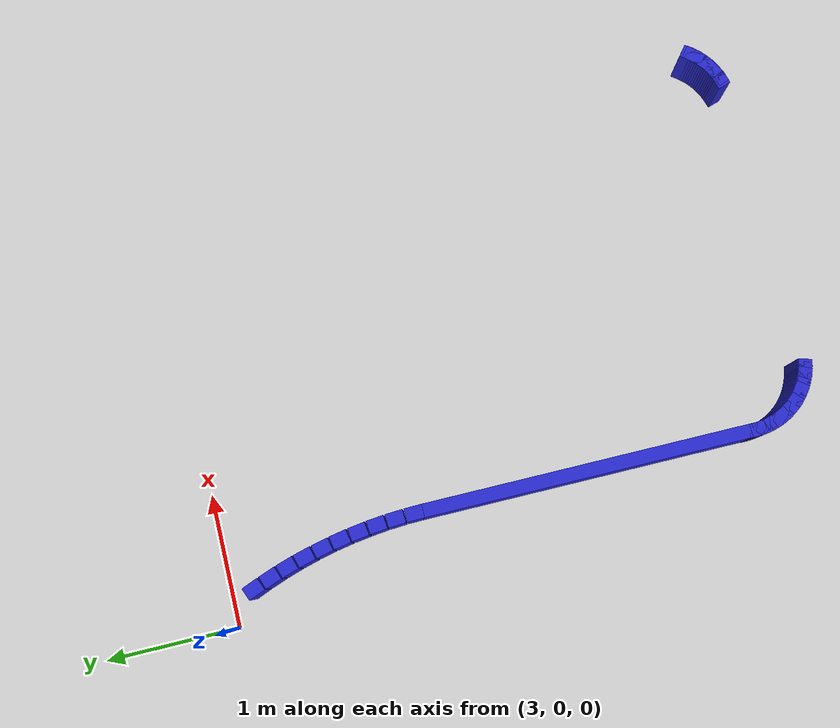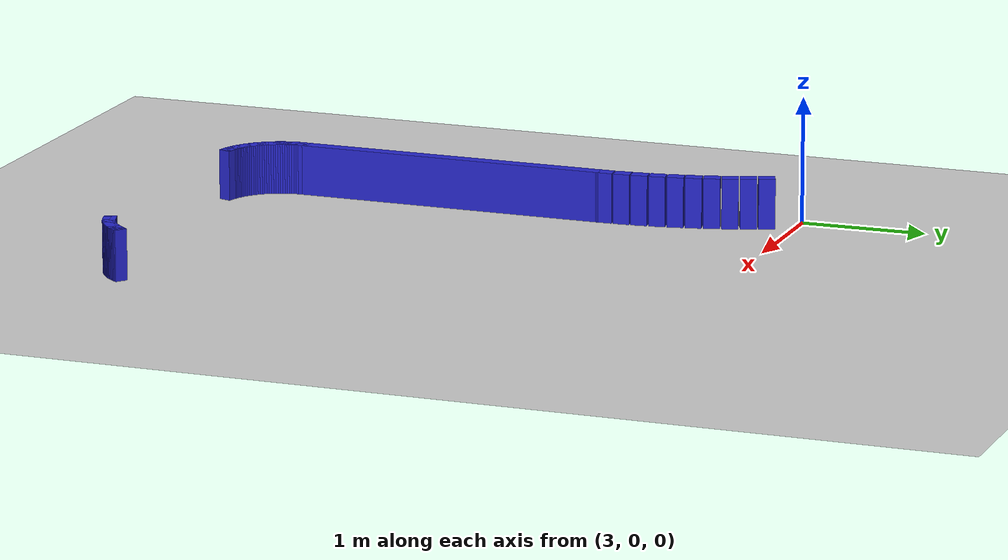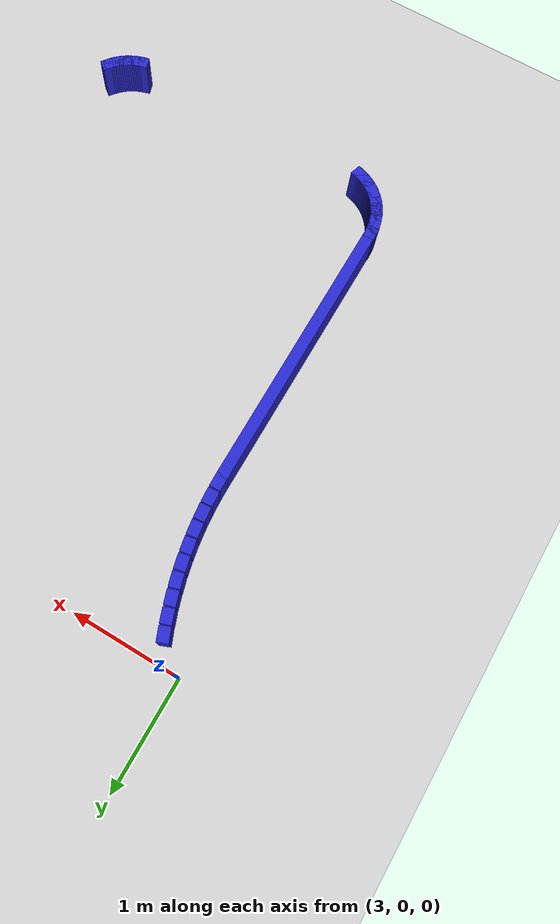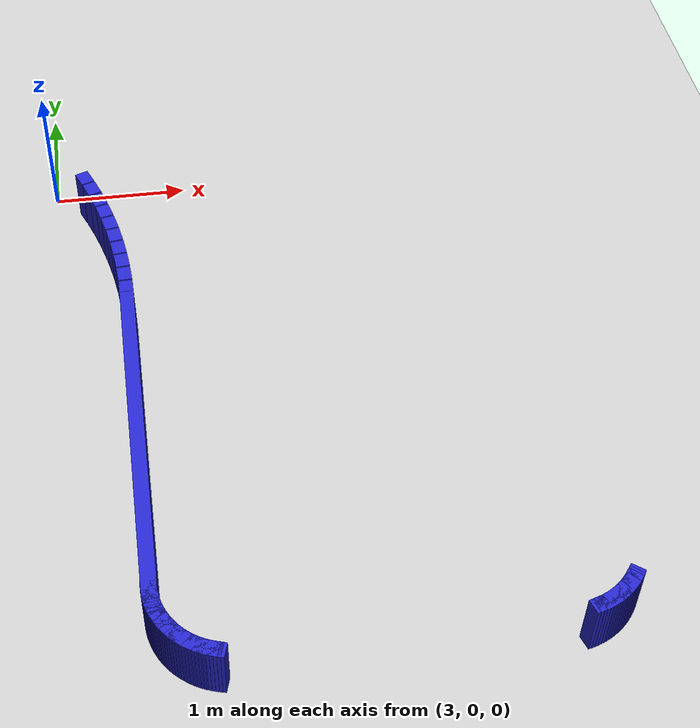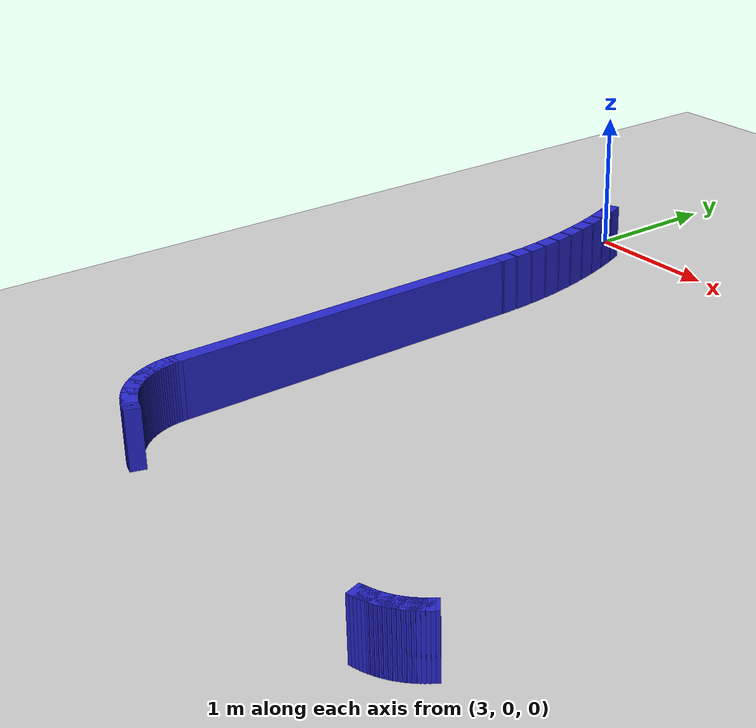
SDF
<sdf version="1.6">
 <world name="new_race_track">
  <include><uri>model://ground_plane</uri></include>
  <include><uri>model://sun</uri></include>
  <model name="race_track">
   <static>true</static>
   <link name="wall_link_149">
    <collision name="c"><geometry><box><size>0.1305 0.1 0.4</size></box></geometry></collision>
    <visual name="v">
     <geometry><box><size>0.1305 0.1 0.4</size></box></geometry>
     <material><ambient>0.15 0.15 0.8 1</ambient><diffuse>0.15 0.15 0.8 1</diffuse></material>
    </visual>
    <pose>3.2465 -0.2134 0.200 0 0 -1.1882</pose>
   </link>
   <link name="wall_link_150">
    <collision name="c"><geometry><box><size>0.1305 0.1 0.4</size></box></geometry></collision>
    <visual name="v">
     <geometry><box><size>0.1305 0.1 0.4</size></box></geometry>
     <material><ambient>0.15 0.15 0.8 1</ambient><diffuse>0.15 0.15 0.8 1</diffuse></material>
    </visual>
    <pose>3.2965 -0.3452 0.200 0 0 -1.2284</pose>
   </link>
   <link name="wall_link_151">
    <collision name="c"><geometry><box><size>0.1305 0.1 0.4</size></box></geometry></collision>
    <visual name="v">
     <geometry><box><size>0.1305 0.1 0.4</size></box></geometry>
     <material><ambient>0.15 0.15 0.8 1</ambient><diffuse>0.15 0.15 0.8 1</diffuse></material>
    </visual>
    <pose>3.3411 -0.4789 0.200 0 0 -1.2687</pose>
   </link>
   <link name="wall_link_152">
    <collision name="c"><geometry><box><size>0.1305 0.1 0.4</size></box></geometry></collision>
    <visual name="v">
     <geometry><box><size>0.1305 0.1 0.4</size></box></geometry>
     <material><ambient>0.15 0.15 0.8 1</ambient><diffuse>0.15 0.15 0.8 1</diffuse></material>
    </visual>
    <pose>3.3803 -0.6142 0.200 0 0 -1.3090</pose>
   </link>
   <link name="wall_link_153">
    <collision name="c"><geometry><box><size>0.1305 0.1 0.4</size></box></geometry></collision>
    <visual name="v">
     <geometry><box><size>0.1305 0.1 0.4</size></box></geometry>
     <material><ambient>0.15 0.15 0.8 1</ambient><diffuse>0.15 0.15 0.8 1</diffuse></material>
    </visual>
    <pose>3.4141 -0.7511 0.200 0 0 -1.3493</pose>
   </link>
   <link name="wall_link_154">
    <collision name="c"><geometry><box><size>0.1305 0.1 0.4</size></box></geometry></collision>
    <visual name="v">
     <geometry><box><size>0.1305 0.1 0.4</size></box></geometry>
     <material><ambient>0.15 0.15 0.8 1</ambient><diffuse>0.15 0.15 0.8 1</diffuse></material>
    </visual>
    <pose>3.4423 -0.8892 0.200 0 0 -1.3896</pose>
   </link>
   <link name="wall_link_155">
    <collision name="c"><geometry><box><size>0.1305 0.1 0.4</size></box></geometry></collision>
    <visual name="v">
     <geometry><box><size>0.1305 0.1 0.4</size></box></geometry>
     <material><ambient>0.15 0.15 0.8 1</ambient><diffuse>0.15 0.15 0.8 1</diffuse></material>
    </visual>
    <pose>3.4649 -1.0283 0.200 0 0 -1.4298</pose>
   </link>
   <link name="wall_link_156">
    <collision name="c"><geometry><box><size>0.1305 0.1 0.4</size></box></geometry></collision>
    <visual name="v">
     <geometry><box><size>0.1305 0.1 0.4</size></box></geometry>
     <material><ambient>0.15 0.15 0.8 1</ambient><diffuse>0.15 0.15 0.8 1</diffuse></material>
    </visual>
    <pose>3.4819 -1.1682 0.200 0 0 -1.4701</pose>
   </link>
   <link name="wall_link_157">
    <collision name="c"><geometry><box><size>0.1305 0.1 0.4</size></box></geometry></collision>
    <visual name="v">
     <geometry><box><size>0.1305 0.1 0.4</size></box></geometry>
     <material><ambient>0.15 0.15 0.8 1</ambient><diffuse>0.15 0.15 0.8 1</diffuse></material>
    </visual>
    <pose>3.4932 -1.3087 0.200 0 0 -1.5104</pose>
   </link>
   <link name="wall_link_158">
    <collision name="c"><geometry><box><size>0.1305 0.1 0.4</size></box></geometry></collision>
    <visual name="v">
     <geometry><box><size>0.1305 0.1 0.4</size></box></geometry>
     <material><ambient>0.15 0.15 0.8 1</ambient><diffuse>0.15 0.15 0.8 1</diffuse></material>
    </visual>
    <pose>3.4989 -1.4495 0.200 0 0 -1.5507</pose>
   </link>
   <link name="merged_wall_link_159">
    <pose>3.5000 -2.7600 0.2000 0.0000 0.0000 -1.5708</pose>
    <collision name="c"><geometry><box><size>2.5300 0.1000 0.4000</size></box></geometry></collision>
    <visual name="v">
     <geometry><box><size>2.5300 0.1000 0.4000</size></box></geometry>
     <material><ambient>0.15 0.15 0.8 1</ambient><diffuse>0.15 0.15 0.8 1</diffuse></material>
    </visual>
   </link>
   <link name="wall_link_160">
    <collision name="c"><geometry><box><size>0.1305 0.1 0.4</size></box></geometry></collision>
    <visual name="v">
     <geometry><box><size>0.1305 0.1 0.4</size></box></geometry>
     <material><ambient>0.15 0.15 0.8 1</ambient><diffuse>0.15 0.15 0.8 1</diffuse></material>
    </visual>
    <pose>3.5005 -4.0101 0.200 0 0 -1.5507</pose>
   </link>
   <link name="wall_link_161">
    <collision name="c"><geometry><box><size>0.1305 0.1 0.4</size></box></geometry></collision>
    <visual name="v">
     <geometry><box><size>0.1305 0.1 0.4</size></box></geometry>
     <material><ambient>0.15 0.15 0.8 1</ambient><diffuse>0.15 0.15 0.8 1</diffuse></material>
    </visual>
    <pose>3.5013 -4.0302 0.200 0 0 -1.5104</pose>
   </link>
   <link name="wall_link_162">
    <collision name="c"><geometry><box><size>0.1305 0.1 0.4</size></box></geometry></collision>
    <visual name="v">
     <geometry><box><size>0.1305 0.1 0.4</size></box></geometry>
     <material><ambient>0.15 0.15 0.8 1</ambient><diffuse>0.15 0.15 0.8 1</diffuse></material>
    </visual>
    <pose>3.5029 -4.0502 0.200 0 0 -1.4701</pose>
   </link>
   <link name="wall_link_163">
    <collision name="c"><geometry><box><size>0.1305 0.1 0.4</size></box></geometry></collision>
    <visual name="v">
     <geometry><box><size>0.1305 0.1 0.4</size></box></geometry>
     <material><ambient>0.15 0.15 0.8 1</ambient><diffuse>0.15 0.15 0.8 1</diffuse></material>
    </visual>
    <pose>3.5054 -4.0702 0.200 0 0 -1.4298</pose>
   </link>
   <link name="wall_link_164">
    <collision name="c"><geometry><box><size>0.1305 0.1 0.4</size></box></geometry></collision>
    <visual name="v">
     <geometry><box><size>0.1305 0.1 0.4</size></box></geometry>
     <material><ambient>0.15 0.15 0.8 1</ambient><diffuse>0.15 0.15 0.8 1</diffuse></material>
    </visual>
    <pose>3.5086 -4.0901 0.200 0 0 -1.3896</pose>
   </link>
   <link name="wall_link_165">
    <collision name="c"><geometry><box><size>0.1305 0.1 0.4</size></box></geometry></collision>
    <visual name="v">
     <geometry><box><size>0.1305 0.1 0.4</size></box></geometry>
     <material><ambient>0.15 0.15 0.8 1</ambient><diffuse>0.15 0.15 0.8 1</diffuse></material>
    </visual>
    <pose>3.5126 -4.1098 0.200 0 0 -1.3493</pose>
   </link>
   <link name="wall_link_166">
    <collision name="c"><geometry><box><size>0.1305 0.1 0.4</size></box></geometry></collision>
    <visual name="v">
     <geometry><box><size>0.1305 0.1 0.4</size></box></geometry>
     <material><ambient>0.15 0.15 0.8 1</ambient><diffuse>0.15 0.15 0.8 1</diffuse></material>
    </visual>
    <pose>3.5174 -4.1293 0.200 0 0 -1.3090</pose>
   </link>
   <link name="wall_link_167">
    <collision name="c"><geometry><box><size>0.1305 0.1 0.4</size></box></geometry></collision>
    <visual name="v">
     <geometry><box><size>0.1305 0.1 0.4</size></box></geometry>
     <material><ambient>0.15 0.15 0.8 1</ambient><diffuse>0.15 0.15 0.8 1</diffuse></material>
    </visual>
    <pose>3.5230 -4.1486 0.200 0 0 -1.2687</pose>
   </link>
   <link name="wall_link_168">
    <collision name="c"><geometry><box><size>0.1305 0.1 0.4</size></box></geometry></collision>
    <visual name="v">
     <geometry><box><size>0.1305 0.1 0.4</size></box></geometry>
     <material><ambient>0.15 0.15 0.8 1</ambient><diffuse>0.15 0.15 0.8 1</diffuse></material>
    </visual>
    <pose>3.5294 -4.1677 0.200 0 0 -1.2284</pose>
   </link>
   <link name="wall_link_169">
    <collision name="c"><geometry><box><size>0.1305 0.1 0.4</size></box></geometry></collision>
    <visual name="v">
     <geometry><box><size>0.1305 0.1 0.4</size></box></geometry>
     <material><ambient>0.15 0.15 0.8 1</ambient><diffuse>0.15 0.15 0.8 1</diffuse></material>
    </visual>
    <pose>3.5365 -4.1865 0.200 0 0 -1.1882</pose>
   </link>
   <link name="wall_link_170">
    <collision name="c"><geometry><box><size>0.1305 0.1 0.4</size></box></geometry></collision>
    <visual name="v">
     <geometry><box><size>0.1305 0.1 0.4</size></box></geometry>
     <material><ambient>0.15 0.15 0.8 1</ambient><diffuse>0.15 0.15 0.8 1</diffuse></material>
    </visual>
    <pose>3.5444 -4.2050 0.200 0 0 -1.1479</pose>
   </link>
   <link name="wall_link_171">
    <collision name="c"><geometry><box><size>0.1305 0.1 0.4</size></box></geometry></collision>
    <visual name="v">
     <geometry><box><size>0.1305 0.1 0.4</size></box></geometry>
     <material><ambient>0.15 0.15 0.8 1</ambient><diffuse>0.15 0.15 0.8 1</diffuse></material>
    </visual>
    <pose>3.5530 -4.2232 0.200 0 0 -1.1076</pose>
   </link>
   <link name="wall_link_172">
    <collision name="c"><geometry><box><size>0.1305 0.1 0.4</size></box></geometry></collision>
    <visual name="v">
     <geometry><box><size>0.1305 0.1 0.4</size></box></geometry>
     <material><ambient>0.15 0.15 0.8 1</ambient><diffuse>0.15 0.15 0.8 1</diffuse></material>
    </visual>
    <pose>3.5624 -4.2410 0.200 0 0 -1.0673</pose>
   </link>
   <link name="wall_link_173">
    <collision name="c"><geometry><box><size>0.1305 0.1 0.4</size></box></geometry></collision>
    <visual name="v">
     <geometry><box><size>0.1305 0.1 0.4</size></box></geometry>
     <material><ambient>0.15 0.15 0.8 1</ambient><diffuse>0.15 0.15 0.8 1</diffuse></material>
    </visual>
    <pose>3.5725 -4.2585 0.200 0 0 -1.0271</pose>
   </link>
   <link name="wall_link_174">
    <collision name="c"><geometry><box><size>0.1305 0.1 0.4</size></box></geometry></collision>
    <visual name="v">
     <geometry><box><size>0.1305 0.1 0.4</size></box></geometry>
     <material><ambient>0.15 0.15 0.8 1</ambient><diffuse>0.15 0.15 0.8 1</diffuse></material>
    </visual>
    <pose>3.5832 -4.2755 0.200 0 0 -0.9868</pose>
   </link>
   <link name="wall_link_175">
    <collision name="c"><geometry><box><size>0.1305 0.1 0.4</size></box></geometry></collision>
    <visual name="v">
     <geometry><box><size>0.1305 0.1 0.4</size></box></geometry>
     <material><ambient>0.15 0.15 0.8 1</ambient><diffuse>0.15 0.15 0.8 1</diffuse></material>
    </visual>
    <pose>3.5946 -4.2920 0.200 0 0 -0.9465</pose>
   </link>
   <link name="wall_link_176">
    <collision name="c"><geometry><box><size>0.1305 0.1 0.4</size></box></geometry></collision>
    <visual name="v">
     <geometry><box><size>0.1305 0.1 0.4</size></box></geometry>
     <material><ambient>0.15 0.15 0.8 1</ambient><diffuse>0.15 0.15 0.8 1</diffuse></material>
    </visual>
    <pose>3.6067 -4.3081 0.200 0 0 -0.9062</pose>
   </link>
   <link name="wall_link_177">
    <collision name="c"><geometry><box><size>0.1305 0.1 0.4</size></box></geometry></collision>
    <visual name="v">
     <geometry><box><size>0.1305 0.1 0.4</size></box></geometry>
     <material><ambient>0.15 0.15 0.8 1</ambient><diffuse>0.15 0.15 0.8 1</diffuse></material>
    </visual>
    <pose>3.6195 -4.3237 0.200 0 0 -0.8660</pose>
   </link>
   <link name="wall_link_178">
    <collision name="c"><geometry><box><size>0.1305 0.1 0.4</size></box></geometry></collision>
    <visual name="v">
     <geometry><box><size>0.1305 0.1 0.4</size></box></geometry>
     <material><ambient>0.15 0.15 0.8 1</ambient><diffuse>0.15 0.15 0.8 1</diffuse></material>
    </visual>
    <pose>3.6328 -4.3388 0.200 0 0 -0.8257</pose>
   </link>
   <link name="wall_link_179">
    <collision name="c"><geometry><box><size>0.1305 0.1 0.4</size></box></geometry></collision>
    <visual name="v">
     <geometry><box><size>0.1305 0.1 0.4</size></box></geometry>
     <material><ambient>0.15 0.15 0.8 1</ambient><diffuse>0.15 0.15 0.8 1</diffuse></material>
    </visual>
    <pose>3.6467 -4.3533 0.200 0 0 -0.7854</pose>
   </link>
   <link name="wall_link_180">
    <collision name="c"><geometry><box><size>0.1305 0.1 0.4</size></box></geometry></collision>
    <visual name="v">
     <geometry><box><size>0.1305 0.1 0.4</size></box></geometry>
     <material><ambient>0.15 0.15 0.8 1</ambient><diffuse>0.15 0.15 0.8 1</diffuse></material>
    </visual>
    <pose>3.6612 -4.3672 0.200 0 0 -0.7451</pose>
   </link>
   <link name="wall_link_181">
    <collision name="c"><geometry><box><size>0.1305 0.1 0.4</size></box></geometry></collision>
    <visual name="v">
     <geometry><box><size>0.1305 0.1 0.4</size></box></geometry>
     <material><ambient>0.15 0.15 0.8 1</ambient><diffuse>0.15 0.15 0.8 1</diffuse></material>
    </visual>
    <pose>3.6763 -4.3805 0.200 0 0 -0.7048</pose>
   </link>
   <link name="wall_link_182">
    <collision name="c"><geometry><box><size>0.1305 0.1 0.4</size></box></geometry></collision>
    <visual name="v">
     <geometry><box><size>0.1305 0.1 0.4</size></box></geometry>
     <material><ambient>0.15 0.15 0.8 1</ambient><diffuse>0.15 0.15 0.8 1</diffuse></material>
    </visual>
    <pose>3.6919 -4.3933 0.200 0 0 -0.6646</pose>
   </link>
   <link name="wall_link_183">
    <collision name="c"><geometry><box><size>0.1305 0.1 0.4</size></box></geometry></collision>
    <visual name="v">
     <geometry><box><size>0.1305 0.1 0.4</size></box></geometry>
     <material><ambient>0.15 0.15 0.8 1</ambient><diffuse>0.15 0.15 0.8 1</diffuse></material>
    </visual>
    <pose>3.7080 -4.4054 0.200 0 0 -0.6243</pose>
   </link>
   <link name="wall_link_184">
    <collision name="c"><geometry><box><size>0.1305 0.1 0.4</size></box></geometry></collision>
    <visual name="v">
     <geometry><box><size>0.1305 0.1 0.4</size></box></geometry>
     <material><ambient>0.15 0.15 0.8 1</ambient><diffuse>0.15 0.15 0.8 1</diffuse></material>
    </visual>
    <pose>3.7245 -4.4168 0.200 0 0 -0.5840</pose>
   </link>
   <link name="wall_link_185">
    <collision name="c"><geometry><box><size>0.1305 0.1 0.4</size></box></geometry></collision>
    <visual name="v">
     <geometry><box><size>0.1305 0.1 0.4</size></box></geometry>
     <material><ambient>0.15 0.15 0.8 1</ambient><diffuse>0.15 0.15 0.8 1</diffuse></material>
    </visual>
    <pose>3.7415 -4.4275 0.200 0 0 -0.5437</pose>
   </link>
   <link name="wall_link_186">
    <collision name="c"><geometry><box><size>0.1305 0.1 0.4</size></box></geometry></collision>
    <visual name="v">
     <geometry><box><size>0.1305 0.1 0.4</size></box></geometry>
     <material><ambient>0.15 0.15 0.8 1</ambient><diffuse>0.15 0.15 0.8 1</diffuse></material>
    </visual>
    <pose>3.7590 -4.4376 0.200 0 0 -0.5035</pose>
   </link>
   <link name="wall_link_187">
    <collision name="c"><geometry><box><size>0.1305 0.1 0.4</size></box></geometry></collision>
    <visual name="v">
     <geometry><box><size>0.1305 0.1 0.4</size></box></geometry>
     <material><ambient>0.15 0.15 0.8 1</ambient><diffuse>0.15 0.15 0.8 1</diffuse></material>
    </visual>
    <pose>3.7768 -4.4470 0.200 0 0 -0.4632</pose>
   </link>
   <link name="wall_link_188">
    <collision name="c"><geometry><box><size>0.1305 0.1 0.4</size></box></geometry></collision>
    <visual name="v">
     <geometry><box><size>0.1305 0.1 0.4</size></box></geometry>
     <material><ambient>0.15 0.15 0.8 1</ambient><diffuse>0.15 0.15 0.8 1</diffuse></material>
    </visual>
    <pose>3.7950 -4.4556 0.200 0 0 -0.4229</pose>
   </link>
   <link name="wall_link_189">
    <collision name="c"><geometry><box><size>0.1305 0.1 0.4</size></box></geometry></collision>
    <visual name="v">
     <geometry><box><size>0.1305 0.1 0.4</size></box></geometry>
     <material><ambient>0.15 0.15 0.8 1</ambient><diffuse>0.15 0.15 0.8 1</diffuse></material>
    </visual>
    <pose>3.8135 -4.4635 0.200 0 0 -0.3826</pose>
   </link>
   <link name="wall_link_190">
    <collision name="c"><geometry><box><size>0.1305 0.1 0.4</size></box></geometry></collision>
    <visual name="v">
     <geometry><box><size>0.1305 0.1 0.4</size></box></geometry>
     <material><ambient>0.15 0.15 0.8 1</ambient><diffuse>0.15 0.15 0.8 1</diffuse></material>
    </visual>
    <pose>3.8323 -4.4706 0.200 0 0 -0.3424</pose>
   </link>
   <link name="wall_link_191">
    <collision name="c"><geometry><box><size>0.1305 0.1 0.4</size></box></geometry></collision>
    <visual name="v">
     <geometry><box><size>0.1305 0.1 0.4</size></box></geometry>
     <material><ambient>0.15 0.15 0.8 1</ambient><diffuse>0.15 0.15 0.8 1</diffuse></material>
    </visual>
    <pose>3.8514 -4.4770 0.200 0 0 -0.3021</pose>
   </link>
   <link name="wall_link_207">
    <collision name="c"><geometry><box><size>0.1305 0.1 0.4</size></box></geometry></collision>
    <visual name="v">
     <geometry><box><size>0.1305 0.1 0.4</size></box></geometry>
     <material><ambient>0.15 0.15 0.8 1</ambient><diffuse>0.15 0.15 0.8 1</diffuse></material>
    </visual>
    <pose>6.1486 -4.4770 0.200 0 0 0.3021</pose>
   </link>
   <link name="wall_link_208">
    <collision name="c"><geometry><box><size>0.1305 0.1 0.4</size></box></geometry></collision>
    <visual name="v">
     <geometry><box><size>0.1305 0.1 0.4</size></box></geometry>
     <material><ambient>0.15 0.15 0.8 1</ambient><diffuse>0.15 0.15 0.8 1</diffuse></material>
    </visual>
    <pose>6.1677 -4.4706 0.200 0 0 0.3424</pose>
   </link>
   <link name="wall_link_209">
    <collision name="c"><geometry><box><size>0.1305 0.1 0.4</size></box></geometry></collision>
    <visual name="v">
     <geometry><box><size>0.1305 0.1 0.4</size></box></geometry>
     <material><ambient>0.15 0.15 0.8 1</ambient><diffuse>0.15 0.15 0.8 1</diffuse></material>
    </visual>
    <pose>6.1865 -4.4635 0.200 0 0 0.3826</pose>
   </link>
   <link name="wall_link_210">
    <collision name="c"><geometry><box><size>0.1305 0.1 0.4</size></box></geometry></collision>
    <visual name="v">
     <geometry><box><size>0.1305 0.1 0.4</size></box></geometry>
     <material><ambient>0.15 0.15 0.8 1</ambient><diffuse>0.15 0.15 0.8 1</diffuse></material>
    </visual>
    <pose>6.2050 -4.4556 0.200 0 0 0.4229</pose>
   </link>
   <link name="wall_link_211">
    <collision name="c"><geometry><box><size>0.1305 0.1 0.4</size></box></geometry></collision>
    <visual name="v">
     <geometry><box><size>0.1305 0.1 0.4</size></box></geometry>
     <material><ambient>0.15 0.15 0.8 1</ambient><diffuse>0.15 0.15 0.8 1</diffuse></material>
    </visual>
    <pose>6.2232 -4.4470 0.200 0 0 0.4632</pose>
   </link>
   <link name="wall_link_212">
    <collision name="c"><geometry><box><size>0.1305 0.1 0.4</size></box></geometry></collision>
    <visual name="v">
     <geometry><box><size>0.1305 0.1 0.4</size></box></geometry>
     <material><ambient>0.15 0.15 0.8 1</ambient><diffuse>0.15 0.15 0.8 1</diffuse></material>
    </visual>
    <pose>6.2410 -4.4376 0.200 0 0 0.5035</pose>
   </link>
   <link name="wall_link_213">
    <collision name="c"><geometry><box><size>0.1305 0.1 0.4</size></box></geometry></collision>
    <visual name="v">
     <geometry><box><size>0.1305 0.1 0.4</size></box></geometry>
     <material><ambient>0.15 0.15 0.8 1</ambient><diffuse>0.15 0.15 0.8 1</diffuse></material>
    </visual>
    <pose>6.2585 -4.4275 0.200 0 0 0.5437</pose>
   </link>
   <link name="wall_link_214">
    <collision name="c"><geometry><box><size>0.1305 0.1 0.4</size></box></geometry></collision>
    <visual name="v">
     <geometry><box><size>0.1305 0.1 0.4</size></box></geometry>
     <material><ambient>0.15 0.15 0.8 1</ambient><diffuse>0.15 0.15 0.8 1</diffuse></material>
    </visual>
    <pose>6.2755 -4.4168 0.200 0 0 0.5840</pose>
   </link>
   <link name="wall_link_215">
    <collision name="c"><geometry><box><size>0.1305 0.1 0.4</size></box></geometry></collision>
    <visual name="v">
     <geometry><box><size>0.1305 0.1 0.4</size></box></geometry>
     <material><ambient>0.15 0.15 0.8 1</ambient><diffuse>0.15 0.15 0.8 1</diffuse></material>
    </visual>
    <pose>6.2920 -4.4054 0.200 0 0 0.6243</pose>
   </link>
   <link name="wall_link_216">
    <collision name="c"><geometry><box><size>0.1305 0.1 0.4</size></box></geometry></collision>
    <visual name="v">
     <geometry><box><size>0.1305 0.1 0.4</size></box></geometry>
     <material><ambient>0.15 0.15 0.8 1</ambient><diffuse>0.15 0.15 0.8 1</diffuse></material>
    </visual>
    <pose>6.3081 -4.3933 0.200 0 0 0.6646</pose>
   </link>
   <link name="wall_link_217">
    <collision name="c"><geometry><box><size>0.1305 0.1 0.4</size></box></geometry></collision>
    <visual name="v">
     <geometry><box><size>0.1305 0.1 0.4</size></box></geometry>
     <material><ambient>0.15 0.15 0.8 1</ambient><diffuse>0.15 0.15 0.8 1</diffuse></material>
    </visual>
    <pose>6.3237 -4.3805 0.200 0 0 0.7048</pose>
   </link>
   <link name="wall_link_218">
    <collision name="c"><geometry><box><size>0.1305 0.1 0.4</size></box></geometry></collision>
    <visual name="v">
     <geometry><box><size>0.1305 0.1 0.4</size></box></geometry>
     <material><ambient>0.15 0.15 0.8 1</ambient><diffuse>0.15 0.15 0.8 1</diffuse></material>
    </visual>
    <pose>6.3388 -4.3672 0.200 0 0 0.7451</pose>
   </link>
   <link name="wall_link_219">
    <collision name="c"><geometry><box><size>0.1305 0.1 0.4</size></box></geometry></collision>
    <visual name="v">
     <geometry><box><size>0.1305 0.1 0.4</size></box></geometry>
     <material><ambient>0.15 0.15 0.8 1</ambient><diffuse>0.15 0.15 0.8 1</diffuse></material>
    </visual>
    <pose>6.3533 -4.3533 0.200 0 0 0.7854</pose>
   </link>
   <link name="wall_link_220">
    <collision name="c"><geometry><box><size>0.1305 0.1 0.4</size></box></geometry></collision>
    <visual name="v">
     <geometry><box><size>0.1305 0.1 0.4</size></box></geometry>
     <material><ambient>0.15 0.15 0.8 1</ambient><diffuse>0.15 0.15 0.8 1</diffuse></material>
    </visual>
    <pose>6.3672 -4.3388 0.200 0 0 0.8257</pose>
   </link>
   <link name="wall_link_221">
    <collision name="c"><geometry><box><size>0.1305 0.1 0.4</size></box></geometry></collision>
    <visual name="v">
     <geometry><box><size>0.1305 0.1 0.4</size></box></geometry>
     <material><ambient>0.15 0.15 0.8 1</ambient><diffuse>0.15 0.15 0.8 1</diffuse></material>
    </visual>
    <pose>6.3805 -4.3237 0.200 0 0 0.8660</pose>
   </link>
   <link name="wall_link_222">
    <collision name="c"><geometry><box><size>0.1305 0.1 0.4</size></box></geometry></collision>
    <visual name="v">
     <geometry><box><size>0.1305 0.1 0.4</size></box></geometry>
     <material><ambient>0.15 0.15 0.8 1</ambient><diffuse>0.15 0.15 0.8 1</diffuse></material>
    </visual>
    <pose>6.3933 -4.3081 0.200 0 0 0.9062</pose>
   </link>
  </model>
 </world>
</sdf>
